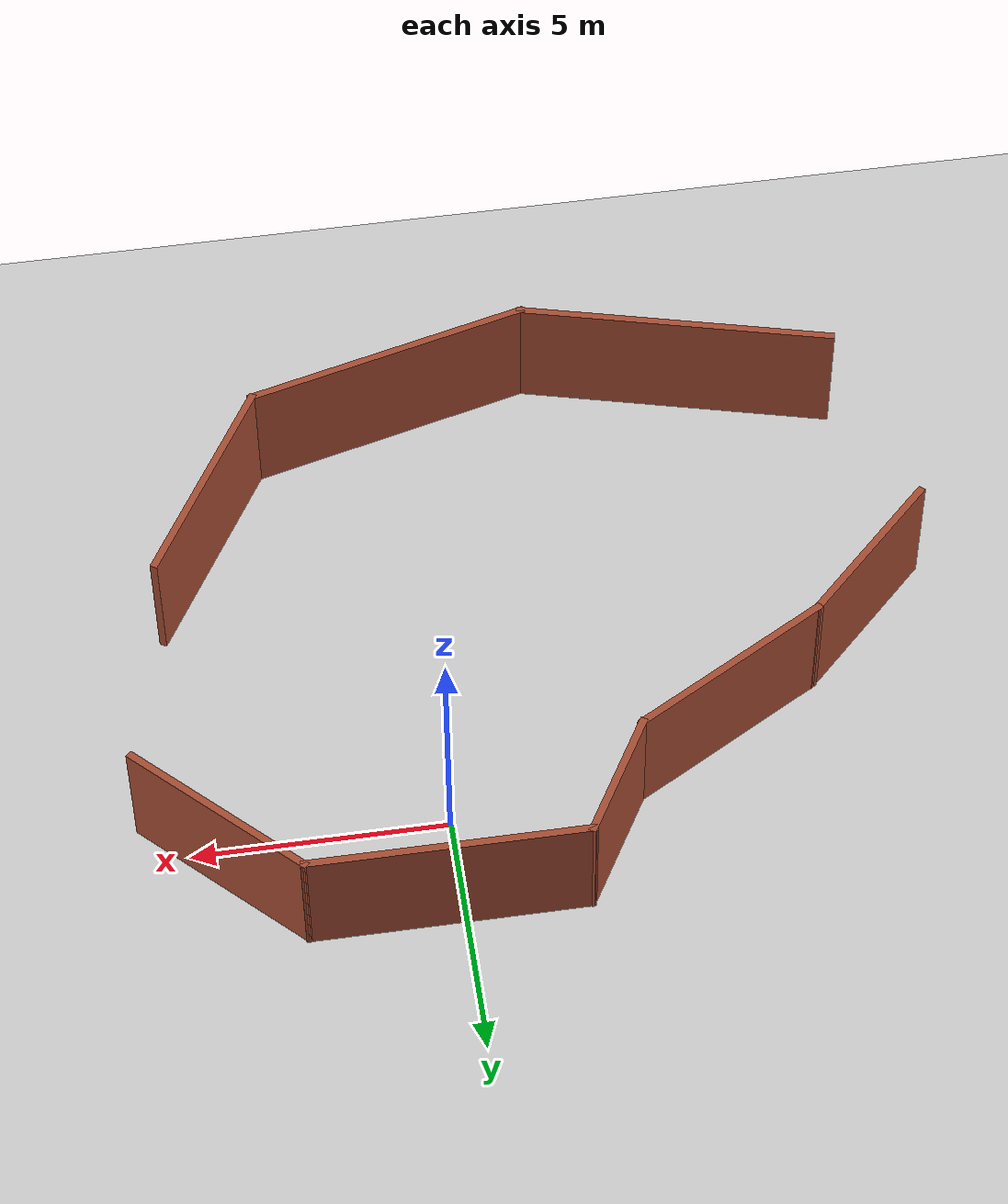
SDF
<sdf version="1.7">
 <world name="default">
  <light name="sun" type="directional">
   <pose>0 0 10 0 -0 0</pose>
   <diffuse>0.8 0.8 0.8 1</diffuse>
   <specular>0.2 0.2 0.2 1</specular>
   <attenuation>
    <range>1000</range>
    <constant>0.9</constant>
    <linear>0.01</linear>
    <quadratic>0.001</quadratic>
   </attenuation>
   <direction>-0.5 0.1 -0.9</direction>
   <spot><inner_angle>0</inner_angle><outer_angle>0</outer_angle><falloff>0</falloff></spot>
  </light>
  <model name="ground_plane">
   <static>1</static>
   <link name="link">
    <collision name="collision">
     <geometry><plane><normal>0 0 1</normal><size>100 100</size></plane></geometry>
     <surface>
      <contact><collide_bitmask>65535</collide_bitmask></contact>
      <friction><ode><mu>100</mu><mu2>50</mu2></ode></friction>
     </surface>
    </collision>
    <visual name="visual">
     <cast_shadows>0</cast_shadows>
     <geometry><plane><normal>0 0 1</normal><size>100 100</size></plane></geometry>
     <material>
      <script><uri>file://media/materials/scripts/gazebo.material</uri><name>Gazebo/Grey</name></script>
     </material>
    </visual>
   </link>
  </model>
  <gravity>0 0 -9.8</gravity>
  <magnetic_field>6e-06 2.3e-05 -4.2e-05</magnetic_field>
  <atmosphere type="adiabatic"/>
  <physics type="ode">
   <max_step_size>0.001</max_step_size>
   <real_time_factor>1</real_time_factor>
   <real_time_update_rate>1000</real_time_update_rate>
  </physics>
  <scene><ambient>0.4 0.4 0.4 1</ambient><background>0.7 0.7 0.7 1</background><shadows>1</shadows></scene>
  <audio><device>default</device></audio>
  <spherical_coordinates>
   <surface_model>EARTH_WGS84</surface_model>
   <latitude_deg>0</latitude_deg>
   <longitude_deg>0</longitude_deg>
   <elevation>0</elevation>
   <heading_deg>0</heading_deg>
  </spherical_coordinates>
  <model name="bricks_0">
   <pose>-2.08185 -4.27945 0 0 -0 0</pose>
   <link name="Wall_10">
    <collision name="Wall_10_Collision">
     <geometry><box><size>6 0.15 2.5</size></box></geometry>
     <pose>0 0 1.25 0 -0 0</pose>
    </collision>
    <visual name="Wall_10_Visual">
     <pose>0 0 1.25 0 -0 0</pose>
     <geometry><box><size>6 0.15 2.5</size></box></geometry>
     <material>
      <script><uri>file://media/materials/scripts/gazebo.material</uri><name>Gazebo/Bricks</name></script>
      <ambient>1 1 1 1</ambient>
     </material>
     <meta><layer>0</layer></meta>
    </visual>
    <pose>1.959 -5.68595 0 0 -0 0.261799</pose>
   </link>
   <link name="Wall_11">
    <collision name="Wall_11_Collision">
     <geometry><box><size>4.75 0.15 2.5</size></box></geometry>
     <pose>0 0 1.25 0 -0 0</pose>
    </collision>
    <visual name="Wall_11_Visual">
     <pose>0 0 1.25 0 -0 0</pose>
     <geometry><box><size>4.75 0.15 2.5</size></box></geometry>
     <material>
      <script><uri>file://media/materials/scripts/gazebo.material</uri><name>Gazebo/Bricks</name></script>
      <ambient>1 1 1 1</ambient>
     </material>
     <meta><layer>0</layer></meta>
    </visual>
    <pose>5.93434 -2.93705 0 0 -0 1.0472</pose>
   </link>
   <link name="Wall_13">
    <collision name="Wall_13_Collision">
     <geometry><box><size>3.75 0.15 2.5</size></box></geometry>
     <pose>0 0 1.25 0 -0 0</pose>
    </collision>
    <visual name="Wall_13_Visual">
     <pose>0 0 1.25 0 -0 0</pose>
     <geometry><box><size>3.75 0.15 2.5</size></box></geometry>
     <material>
      <script><uri>file://media/materials/scripts/gazebo.material</uri><name>Gazebo/Bricks</name></script>
      <ambient>1 1 1 1</ambient>
     </material>
     <meta><layer>0</layer></meta>
    </visual>
    <pose>-6.65817 0.729328 0 0 -0 0.785398</pose>
   </link>
   <link name="Wall_14">
    <collision name="Wall_14_Collision">
     <geometry><box><size>4.5 0.15 2.5</size></box></geometry>
     <pose>0 0 1.25 0 -0 0</pose>
    </collision>
    <visual name="Wall_14_Visual">
     <pose>0 0 1.25 0 -0 0</pose>
     <geometry><box><size>4.5 0.15 2.5</size></box></geometry>
     <material>
      <script><uri>file://media/materials/scripts/gazebo.material</uri><name>Gazebo/Bricks</name></script>
      <ambient>1 1 1 1</ambient>
     </material>
     <meta><layer>0</layer></meta>
    </visual>
    <pose>-3.50178 3.08962 0 0 -0 0.523599</pose>
   </link>
   <link name="Wall_15">
    <collision name="Wall_15_Collision">
     <geometry><box><size>2.75 0.15 2.5</size></box></geometry>
     <pose>0 0 1.25 0 -0 0</pose>
    </collision>
    <visual name="Wall_15_Visual">
     <pose>0 0 1.25 0 -0 0</pose>
     <geometry><box><size>2.75 0.15 2.5</size></box></geometry>
     <material>
      <script><uri>file://media/materials/scripts/gazebo.material</uri><name>Gazebo/Bricks</name></script>
      <ambient>1 1 1 1</ambient>
     </material>
     <meta><layer>0</layer></meta>
    </visual>
    <pose>-0.968171 5.30295 0 0 -0 1.0472</pose>
   </link>
   <link name="Wall_16">
    <collision name="Wall_16_Collision">
     <geometry><box><size>5.5 0.15 2.5</size></box></geometry>
     <pose>0 0 1.25 0 -0 0</pose>
    </collision>
    <visual name="Wall_16_Visual">
     <pose>0 0 1.25 0 -0 0</pose>
     <geometry><box><size>5.5 0.15 2.5</size></box></geometry>
     <material>
      <script><uri>file://media/materials/scripts/gazebo.material</uri><name>Gazebo/Bricks</name></script>
      <ambient>1 1 1 1</ambient>
     </material>
     <meta><layer>0</layer></meta>
    </visual>
    <pose>2.35683 6.42879 0 0 -0 0</pose>
   </link>
   <link name="Wall_17">
    <collision name="Wall_17_Collision">
     <geometry><box><size>4.25 0.15 2.5</size></box></geometry>
     <pose>0 0 1.25 0 -0 0</pose>
    </collision>
    <visual name="Wall_17_Visual">
     <pose>0 0 1.25 0 -0 0</pose>
     <geometry><box><size>4.25 0.15 2.5</size></box></geometry>
     <material>
      <script><uri>file://media/materials/scripts/gazebo.material</uri><name>Gazebo/Bricks</name></script>
      <ambient>1 1 1 1</ambient>
     </material>
     <meta><layer>0</layer></meta>
    </visual>
    <pose>6.4814 4.97922 0 0 -0 -0.785398</pose>
   </link>
   <link name="Wall_9">
    <collision name="Wall_9_Collision">
     <geometry><box><size>6.5 0.15 2.5</size></box></geometry>
     <pose>0 0 1.25 0 -0 0</pose>
    </collision>
    <visual name="Wall_9_Visual">
     <pose>0 0 1.25 0 -0 0</pose>
     <geometry><box><size>6.5 0.15 2.5</size></box></geometry>
     <material>
      <script><uri>file://media/materials/scripts/gazebo.material</uri><name>Gazebo/Bricks</name></script>
      <ambient>1 1 1 1</ambient>
     </material>
     <meta><layer>0</layer></meta>
    </visual>
    <pose>-3.93315 -5.62125 0 0 -0 -0.261799</pose>
   </link>
   <static>1</static>
  </model>
 </world>
</sdf>
